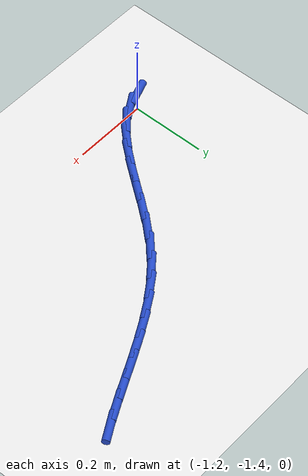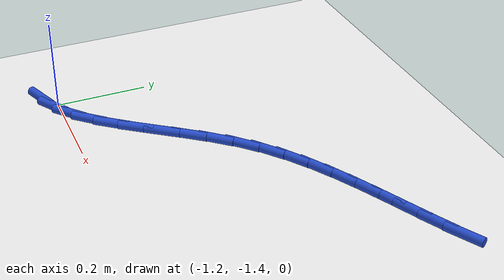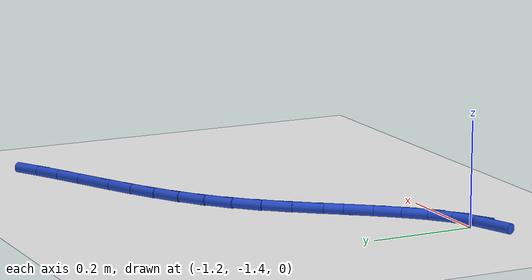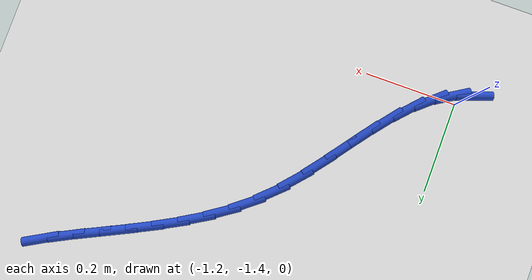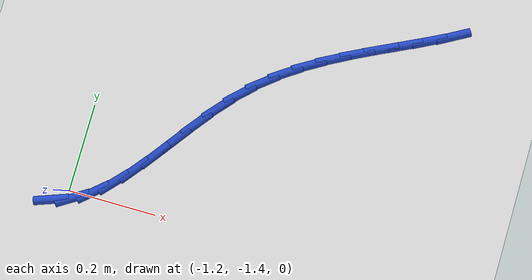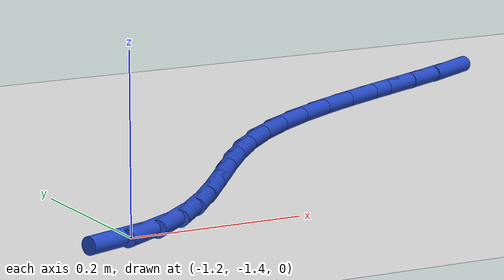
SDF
<sdf version="1.6">
 <world name="default">
  <model name="ground_plane">
   <static>1</static>
   <link name="link">
    <collision name="collision">
     <geometry><plane><normal>0 0 1</normal><size>100 100</size></plane></geometry>
     <surface><friction><ode><mu>100</mu><mu2>50</mu2></ode></friction></surface>
    </collision>
    <visual name="visual">
     <cast_shadows>0</cast_shadows>
     <geometry><plane><normal>0 0 1</normal><size>100 100</size></plane></geometry>
     <material>
      <script><uri>file://media/materials/scripts/gazebo.material</uri><name>Gazebo/WhiteGlow</name></script>
     </material>
    </visual>
   </link>
  </model>
  <model name="line">
   <link name="link_114">
    <pose>-1.2315309197549296 -1.4292145204925033 0.01 0 1.57 0.3495035568629828</pose>
    <collision name="collision">
     <geometry><cylinder><radius>0.01</radius><length>0.08</length></cylinder></geometry>
    </collision>
    <visual name="visual">
     <material>
      <script><name>Gazebo/Blue</name><uri>file://media/materials/scripts/gazebo.material</uri></script>
     </material>
     <geometry><cylinder><radius>0.01</radius><length>0.08</length></cylinder></geometry>
    </visual>
   </link>
   <link name="link_115">
    <pose>-1.1872052807952453 -1.4130593319588423 0.01 0 1.57 0.5562163343439304</pose>
    <collision name="collision">
     <geometry><cylinder><radius>0.01</radius><length>0.08</length></cylinder></geometry>
    </collision>
    <visual name="visual">
     <material>
      <script><name>Gazebo/Blue</name><uri>file://media/materials/scripts/gazebo.material</uri></script>
     </material>
     <geometry><cylinder><radius>0.01</radius><length>0.08</length></cylinder></geometry>
    </visual>
   </link>
   <link name="link_116">
    <pose>-1.146228457603841 -1.3875844061270963 0.01 0 1.57 0.7183394161019963</pose>
    <collision name="collision">
     <geometry><cylinder><radius>0.01</radius><length>0.08</length></cylinder></geometry>
    </collision>
    <visual name="visual">
     <material>
      <script><name>Gazebo/Blue</name><uri>file://media/materials/scripts/gazebo.material</uri></script>
     </material>
     <geometry><cylinder><radius>0.01</radius><length>0.08</length></cylinder></geometry>
    </visual>
   </link>
   <link name="link_117">
    <pose>-1.1079719587306918 -1.3541430926612172 0.01 0 1.57 0.8286637285707831</pose>
    <collision name="collision">
     <geometry><cylinder><radius>0.01</radius><length>0.08</length></cylinder></geometry>
    </collision>
    <visual name="visual">
     <material>
      <script><name>Gazebo/Blue</name><uri>file://media/materials/scripts/gazebo.material</uri></script>
     </material>
     <geometry><cylinder><radius>0.01</radius><length>0.08</length></cylinder></geometry>
    </visual>
   </link>
   <link name="link_118">
    <pose>-1.0716421330243102 -1.3145252984047175 0.01 0 1.57 0.896148104968173</pose>
    <collision name="collision">
     <geometry><cylinder><radius>0.01</radius><length>0.08</length></cylinder></geometry>
    </collision>
    <visual name="visual">
     <material>
      <script><name>Gazebo/Blue</name><uri>file://media/materials/scripts/gazebo.material</uri></script>
     </material>
     <geometry><cylinder><radius>0.01</radius><length>0.08</length></cylinder></geometry>
    </visual>
   </link>
   <link name="link_119">
    <pose>-1.0364453293332099 -1.2705209302011102 0.01 0 1.57 0.9285783954568998</pose>
    <collision name="collision">
     <geometry><cylinder><radius>0.01</radius><length>0.08</length></cylinder></geometry>
    </collision>
    <visual name="visual">
     <material>
      <script><name>Gazebo/Blue</name><uri>file://media/materials/scripts/gazebo.material</uri></script>
     </material>
     <geometry><cylinder><radius>0.01</radius><length>0.08</length></cylinder></geometry>
    </visual>
   </link>
   <link name="link_120">
    <pose>-1.001587896505903 -1.223919894893907 0.01 0 1.57 0.9305991488529186</pose>
    <collision name="collision">
     <geometry><cylinder><radius>0.01</radius><length>0.08</length></cylinder></geometry>
    </collision>
    <visual name="visual">
     <material>
      <script><name>Gazebo/Blue</name><uri>file://media/materials/scripts/gazebo.material</uri></script>
     </material>
     <geometry><cylinder><radius>0.01</radius><length>0.08</length></cylinder></geometry>
    </visual>
   </link>
   <link name="link_121">
    <pose>-0.9662761833909044 -1.176512099326622 0.01 0 1.57 0.90372084175824</pose>
    <collision name="collision">
     <geometry><cylinder><radius>0.01</radius><length>0.08</length></cylinder></geometry>
    </collision>
    <visual name="visual">
     <material>
      <script><name>Gazebo/Blue</name><uri>file://media/materials/scripts/gazebo.material</uri></script>
     </material>
     <geometry><cylinder><radius>0.01</radius><length>0.08</length></cylinder></geometry>
    </visual>
   </link>
   <link name="link_122">
    <pose>-0.9297165388367277 -1.130087450342769 0.01 0 1.57 0.8467217251729191</pose>
    <collision name="collision">
     <geometry><cylinder><radius>0.01</radius><length>0.08</length></cylinder></geometry>
    </collision>
    <visual name="visual">
     <material>
      <script><name>Gazebo/Blue</name><uri>file://media/materials/scripts/gazebo.material</uri></script>
     </material>
     <geometry><cylinder><radius>0.01</radius><length>0.08</length></cylinder></geometry>
    </visual>
   </link>
   <link name="link_123">
    <pose>-0.8911153116918847 -1.0864358547858592 0.01 0 1.57 0.7596980808858043</pose>
    <collision name="collision">
     <geometry><cylinder><radius>0.01</radius><length>0.08</length></cylinder></geometry>
    </collision>
    <visual name="visual">
     <material>
      <script><name>Gazebo/Blue</name><uri>file://media/materials/scripts/gazebo.material</uri></script>
     </material>
     <geometry><cylinder><radius>0.01</radius><length>0.08</length></cylinder></geometry>
    </visual>
   </link>
   <link name="link_124">
    <pose>-0.8497711208222897 -1.0471639602301452 0.01 0 1.57 0.6698867630997248</pose>
    <collision name="collision">
     <geometry><cylinder><radius>0.01</radius><length>0.08</length></cylinder></geometry>
    </collision>
    <visual name="visual">
     <material>
      <script><name>Gazebo/Blue</name><uri>file://media/materials/scripts/gazebo.material</uri></script>
     </material>
     <geometry><cylinder><radius>0.01</radius><length>0.08</length></cylinder></geometry>
    </visual>
   </link>
   <link name="link_125">
    <pose>-0.8057709057982291 -1.0123127152254632 0.01 0 1.57 0.5940335803179434</pose>
    <collision name="collision">
     <geometry><cylinder><radius>0.01</radius><length>0.08</length></cylinder></geometry>
    </collision>
    <visual name="visual">
     <material>
      <script><name>Gazebo/Blue</name><uri>file://media/materials/scripts/gazebo.material</uri></script>
     </material>
     <geometry><cylinder><radius>0.01</radius><length>0.08</length></cylinder></geometry>
    </visual>
   </link>
   <link name="link_126">
    <pose>-0.7596013306745658 -0.9811291677782906 0.01 0 1.57 0.5337160808937281</pose>
    <collision name="collision">
     <geometry><cylinder><radius>0.01</radius><length>0.08</length></cylinder></geometry>
    </collision>
    <visual name="visual">
     <material>
      <script><name>Gazebo/Blue</name><uri>file://media/materials/scripts/gazebo.material</uri></script>
     </material>
     <geometry><cylinder><radius>0.01</radius><length>0.08</length></cylinder></geometry>
    </visual>
   </link>
   <link name="link_127">
    <pose>-0.7117521830565697 -0.9528541621511328 0.01 0 1.57 0.4895051011239477</pose>
    <collision name="collision">
     <geometry><cylinder><radius>0.01</radius><length>0.08</length></cylinder></geometry>
    </collision>
    <visual name="visual">
     <material>
      <script><name>Gazebo/Blue</name><uri>file://media/materials/scripts/gazebo.material</uri></script>
     </material>
     <geometry><cylinder><radius>0.01</radius><length>0.08</length></cylinder></geometry>
    </visual>
   </link>
   <link name="link_128">
    <pose>-0.6627132505495069 -0.9267285426064922 0.01 0 1.57 0.4614888137217955</pose>
    <collision name="collision">
     <geometry><cylinder><radius>0.01</radius><length>0.08</length></cylinder></geometry>
    </collision>
    <visual name="visual">
     <material>
      <script><name>Gazebo/Blue</name><uri>file://media/materials/scripts/gazebo.material</uri></script>
     </material>
     <geometry><cylinder><radius>0.01</radius><length>0.08</length></cylinder></geometry>
    </visual>
   </link>
   <link name="link_129">
    <pose>-0.6129743207586472 -0.9019931534068742 0.01 0 1.57 0.4496124509532329</pose>
    <collision name="collision">
     <geometry><cylinder><radius>0.01</radius><length>0.08</length></cylinder></geometry>
    </collision>
    <visual name="visual">
     <material>
      <script><name>Gazebo/Blue</name><uri>file://media/materials/scripts/gazebo.material</uri></script>
     </material>
     <geometry><cylinder><radius>0.01</radius><length>0.08</length></cylinder></geometry>
    </visual>
   </link>
   <link name="link_130">
    <pose>-0.5630251812892587 -0.8778888388147827 0.01 0 1.57 0.4538983404032442</pose>
    <collision name="collision">
     <geometry><cylinder><radius>0.01</radius><length>0.08</length></cylinder></geometry>
    </collision>
    <visual name="visual">
     <material>
      <script><name>Gazebo/Blue</name><uri>file://media/materials/scripts/gazebo.material</uri></script>
     </material>
     <geometry><cylinder><radius>0.01</radius><length>0.08</length></cylinder></geometry>
    </visual>
   </link>
   <link name="link_131">
    <pose>-0.5133556197466087 -0.853656443092722 0.01 0 1.57 0.4745410025295916</pose>
    <collision name="collision">
     <geometry><cylinder><radius>0.01</radius><length>0.08</length></cylinder></geometry>
    </collision>
    <visual name="visual">
     <material>
      <script><name>Gazebo/Blue</name><uri>file://media/materials/scripts/gazebo.material</uri></script>
     </material>
     <geometry><cylinder><radius>0.01</radius><length>0.08</length></cylinder></geometry>
    </visual>
   </link>
   <link name="link_132">
    <pose>-0.46445542373596627 -0.8285368105031958 0.01 0 1.57 0.5118780888936507</pose>
    <collision name="collision">
     <geometry><cylinder><radius>0.01</radius><length>0.08</length></cylinder></geometry>
    </collision>
    <visual name="visual">
     <material>
      <script><name>Gazebo/Blue</name><uri>file://media/materials/scripts/gazebo.material</uri></script>
     </material>
     <geometry><cylinder><radius>0.01</radius><length>0.08</length></cylinder></geometry>
    </visual>
   </link>
  </model>
 </world>
</sdf>
